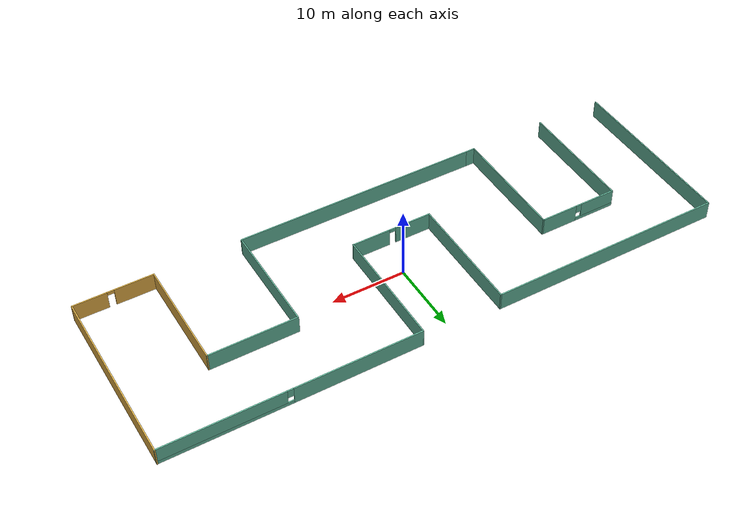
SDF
<?xml version='1.0'?>
<sdf version='1.6'>
  <model name='mybuilding'>
    <pose frame=''>-0.424908 -0.788809 0 0 -0 0</pose>
    <link name='Wall_10'>
      <collision name='Wall_10_Collision'>
        <geometry>
          <box>
            <size>15.5 0.15 2.5</size>
          </box>
        </geometry>
        <pose frame=''>0 0 1.25 0 -0 0</pose>
      </collision>
      <visual name='Wall_10_Visual'>
        <pose frame=''>0 0 1.25 0 -0 0</pose>
        <geometry>
          <box>
            <size>15.5 0.15 2.5</size>
          </box>
        </geometry>
        <material>
          <script>
            <uri>file://media/materials/scripts/gazebo.material</uri>
            <name>Gazebo/Grey</name>
          </script>
          <ambient>1 0.764706 0.305882 1</ambient>
        </material>
      </visual>
      <pose frame=''>28.0301 -4.75 0 0 -0 1.5708</pose>
    </link>
    <link name='Wall_11'>
      <collision name='Wall_11_Collision'>
        <geometry>
          <box>
            <size>12 0.15 2.5</size>
          </box>
        </geometry>
        <pose frame=''>0 0 1.25 0 -0 0</pose>
      </collision>
      <visual name='Wall_11_Visual'>
        <pose frame=''>0 0 1.25 0 -0 0</pose>
        <geometry>
          <box>
            <size>12 0.15 2.5</size>
          </box>
        </geometry>
        <material>
          <script>
            <uri>file://media/materials/scripts/gazebo.material</uri>
            <name>Gazebo/Grey</name>
          </script>
          <ambient>0.435294 0.796078 0.67451 1</ambient>
        </material>
      </visual>
      <pose frame=''>22.1051 2.925 0 0 -0 3.14159</pose>
    </link>
    <link name='Wall_12'>
      <collision name='Wall_12_Collision'>
        <geometry>
          <box>
            <size>15.5 0.15 2.5</size>
          </box>
        </geometry>
        <pose frame=''>0 0 1.25 0 -0 0</pose>
      </collision>
      <visual name='Wall_12_Visual'>
        <pose frame=''>0 0 1.25 0 -0 0</pose>
        <geometry>
          <box>
            <size>15.5 0.15 2.5</size>
          </box>
        </geometry>
        <material>
          <script>
            <uri>file://media/materials/scripts/gazebo.material</uri>
            <name>Gazebo/Grey</name>
          </script>
          <ambient>0.435294 0.796078 0.67451 1</ambient>
        </material>
      </visual>
      <pose frame=''>16.1801 -4.75 0 0 0 -1.5708</pose>
    </link>
    <link name='Wall_14'>
      <collision name='Wall_14_Collision'>
        <geometry>
          <box>
            <size>17 0.15 2.5</size>
          </box>
        </geometry>
        <pose frame=''>0 0 1.25 0 -0 0</pose>
      </collision>
      <visual name='Wall_14_Visual'>
        <pose frame=''>0 0 1.25 0 -0 0</pose>
        <geometry>
          <box>
            <size>17 0.15 2.5</size>
          </box>
        </geometry>
        <material>
          <script>
            <uri>file://media/materials/scripts/gazebo.material</uri>
            <name>Gazebo/Grey</name>
          </script>
          <ambient>0.435294 0.796078 0.67451 1</ambient>
        </material>
      </visual>
      <pose frame=''>4.55 3.9465 0 0 0 -1.5708</pose>
    </link>
    <link name='Wall_15'>
      <pose frame=''>-1 -4.4785 0 0 -0 3.14159</pose>
      <visual name='Wall_15_Visual_0'>
        <pose frame=''>-2.97687 0 1.25 0 -0 0</pose>
        <geometry>
          <box>
            <size>5.29627 0.15 2.5</size>
          </box>
        </geometry>
        <material>
          <script>
            <uri>file://media/materials/scripts/gazebo.material</uri>
            <name>Gazebo/Grey</name>
          </script>
          <ambient>0.435294 0.796078 0.67451 1</ambient>
        </material>
      </visual>
      <collision name='Wall_15_Collision_0'>
        <geometry>
          <box>
            <size>5.29627 0.15 2.5</size>
          </box>
        </geometry>
        <pose frame=''>-2.97687 0 1.25 0 -0 0</pose>
      </collision>
      <visual name='Wall_15_Visual_1'>
        <pose frame=''>3.09813 0 1.25 0 -0 0</pose>
        <geometry>
          <box>
            <size>5.05373 0.15 2.5</size>
          </box>
        </geometry>
        <material>
          <script>
            <uri>file://media/materials/scripts/gazebo.material</uri>
            <name>Gazebo/Grey</name>
          </script>
          <ambient>0.435294 0.796078 0.67451 1</ambient>
        </material>
      </visual>
      <collision name='Wall_15_Collision_1'>
        <geometry>
          <box>
            <size>5.05373 0.15 2.5</size>
          </box>
        </geometry>
        <pose frame=''>3.09813 0 1.25 0 -0 0</pose>
      </collision>
      <visual name='Wall_15_Visual_2'>
        <pose frame=''>0.121265 0 2.25 0 -0 0</pose>
        <geometry>
          <box>
            <size>0.9 0.15 0.5</size>
          </box>
        </geometry>
        <material>
          <script>
            <uri>file://media/materials/scripts/gazebo.material</uri>
            <name>Gazebo/Grey</name>
          </script>
          <ambient>0.435294 0.796078 0.67451 1</ambient>
        </material>
      </visual>
      <collision name='Wall_15_Collision_2'>
        <geometry>
          <box>
            <size>0.9 0.15 0.5</size>
          </box>
        </geometry>
        <pose frame=''>0.121265 0 2.25 0 -0 0</pose>
      </collision>
    </link>
    <link name='Wall_17'>
      <collision name='Wall_17_Collision'>
        <geometry>
          <box>
            <size>33.5 0.15 2.5</size>
          </box>
        </geometry>
        <pose frame=''>0 0 1.25 0 -0 0</pose>
      </collision>
      <visual name='Wall_17_Visual'>
        <pose frame=''>0 0 1.25 0 -0 0</pose>
        <geometry>
          <box>
            <size>33.5 0.15 2.5</size>
          </box>
        </geometry>
        <material>
          <script>
            <uri>file://media/materials/scripts/gazebo.material</uri>
            <name>Gazebo/Grey</name>
          </script>
          <ambient>0.435294 0.796078 0.67451 1</ambient>
        </material>
      </visual>
      <pose frame=''>-0.494871 -12.425 0 0 -0 3.14159</pose>
    </link>
    <link name='Wall_18'>
      <collision name='Wall_18_Collision'>
        <geometry>
          <box>
            <size>1.5 0.15 2.5</size>
          </box>
        </geometry>
        <pose frame=''>0 0 1.25 0 -0 0</pose>
      </collision>
      <visual name='Wall_18_Visual'>
        <pose frame=''>0 0 1.25 0 -0 0</pose>
        <geometry>
          <box>
            <size>1.5 0.15 2.5</size>
          </box>
        </geometry>
        <material>
          <script>
            <uri>file://media/materials/scripts/gazebo.material</uri>
            <name>Gazebo/Grey</name>
          </script>
          <ambient>0.435294 0.796078 0.67451 1</ambient>
        </material>
      </visual>
      <pose frame=''>-17.8449 -12.425 0 0 -0 3.14159</pose>
    </link>
    <link name='Wall_19'>
      <collision name='Wall_19_Collision'>
        <geometry>
          <box>
            <size>16.5 0.15 2.5</size>
          </box>
        </geometry>
        <pose frame=''>0 0 1.25 0 -0 0</pose>
      </collision>
      <visual name='Wall_19_Visual'>
        <pose frame=''>0 0 1.25 0 -0 0</pose>
        <geometry>
          <box>
            <size>16.5 0.15 2.5</size>
          </box>
        </geometry>
        <material>
          <script>
            <uri>file://media/materials/scripts/gazebo.material</uri>
            <name>Gazebo/Grey</name>
          </script>
          <ambient>0.435294 0.796078 0.67451 1</ambient>
        </material>
      </visual>
      <pose frame=''>-18.5199 -4.25 0 0 -0 1.5708</pose>
    </link>
    <link name='Wall_21'>
      <pose frame=''>21.6 12.3715 0 0 -0 0</pose>
      <visual name='Wall_21_Visual_0'>
        <pose frame=''>-8.51309 0 1.25 0 -0 0</pose>
        <geometry>
          <box>
            <size>17.2238 0.15 2.5</size>
          </box>
        </geometry>
        <material>
          <script>
            <uri>file://media/materials/scripts/gazebo.material</uri>
            <name>Gazebo/Grey</name>
          </script>
          <ambient>0.435294 0.796078 0.67451 1</ambient>
        </material>
      </visual>
      <collision name='Wall_21_Collision_0'>
        <geometry>
          <box>
            <size>17.2238 0.15 2.5</size>
          </box>
        </geometry>
        <pose frame=''>-8.51309 0 1.25 0 -0 0</pose>
      </collision>
      <visual name='Wall_21_Visual_1'>
        <pose frame=''>8.61191 0 0.25 0 -0 0</pose>
        <geometry>
          <box>
            <size>17.0262 0.15 0.5</size>
          </box>
        </geometry>
        <material>
          <script>
            <uri>file://media/materials/scripts/gazebo.material</uri>
            <name>Gazebo/Grey</name>
          </script>
          <ambient>0.435294 0.796078 0.67451 1</ambient>
        </material>
      </visual>
      <collision name='Wall_21_Collision_1'>
        <geometry>
          <box>
            <size>17.0262 0.15 0.5</size>
          </box>
        </geometry>
        <pose frame=''>8.61191 0 0.25 0 -0 0</pose>
      </collision>
      <visual name='Wall_21_Visual_2'>
        <pose frame=''>9.01191 0 1.5 0 -0 0</pose>
        <geometry>
          <box>
            <size>16.2262 0.15 2</size>
          </box>
        </geometry>
        <material>
          <script>
            <uri>file://media/materials/scripts/gazebo.material</uri>
            <name>Gazebo/Grey</name>
          </script>
          <ambient>0.435294 0.796078 0.67451 1</ambient>
        </material>
      </visual>
      <collision name='Wall_21_Collision_2'>
        <geometry>
          <box>
            <size>16.2262 0.15 2</size>
          </box>
        </geometry>
        <pose frame=''>9.01191 0 1.5 0 -0 0</pose>
      </collision>
      <visual name='Wall_21_Visual_3'>
        <pose frame=''>0.498819 0 1.9 0 -0 0</pose>
        <geometry>
          <box>
            <size>0.8 0.15 1.2</size>
          </box>
        </geometry>
        <material>
          <script>
            <uri>file://media/materials/scripts/gazebo.material</uri>
            <name>Gazebo/Grey</name>
          </script>
          <ambient>0.435294 0.796078 0.67451 1</ambient>
        </material>
      </visual>
      <collision name='Wall_21_Collision_3'>
        <geometry>
          <box>
            <size>0.8 0.15 1.2</size>
          </box>
        </geometry>
        <pose frame=''>0.498819 0 1.9 0 -0 0</pose>
      </collision>
    </link>
    <link name='Wall_23'>
      <collision name='Wall_23_Collision'>
        <geometry>
          <box>
            <size>16.75 0.15 2.5</size>
          </box>
        </geometry>
        <pose frame=''>0 0 1.25 0 -0 0</pose>
      </collision>
      <visual name='Wall_23_Visual'>
        <pose frame=''>0 0 1.25 0 -0 0</pose>
        <geometry>
          <box>
            <size>16.75 0.15 2.5</size>
          </box>
        </geometry>
        <material>
          <script>
            <uri>file://media/materials/scripts/gazebo.material</uri>
            <name>Gazebo/Grey</name>
          </script>
          <ambient>0.435294 0.796078 0.67451 1</ambient>
        </material>
      </visual>
      <pose frame=''>-6.55 3.8215 0 0 -0 1.5708</pose>
    </link>
    <link name='Wall_24'>
      <collision name='Wall_24_Collision'>
        <geometry>
          <box>
            <size>32.25 0.15 2.5</size>
          </box>
        </geometry>
        <pose frame=''>0 0 1.25 0 -0 0</pose>
      </collision>
      <visual name='Wall_24_Visual'>
        <pose frame=''>0 0 1.25 0 -0 0</pose>
        <geometry>
          <box>
            <size>32.25 0.15 2.5</size>
          </box>
        </geometry>
        <material>
          <script>
            <uri>file://media/materials/scripts/gazebo.material</uri>
            <name>Gazebo/Grey</name>
          </script>
          <ambient>0.435294 0.796078 0.67451 1</ambient>
        </material>
      </visual>
      <pose frame=''>-22.6 12.1215 0 0 -0 3.14159</pose>
    </link>
    <link name='Wall_25'>
      <collision name='Wall_25_Collision'>
        <geometry>
          <box>
            <size>24.5 0.15 2.5</size>
          </box>
        </geometry>
        <pose frame=''>0 0 1.25 0 -0 0</pose>
      </collision>
      <visual name='Wall_25_Visual'>
        <pose frame=''>0 0 1.25 0 -0 0</pose>
        <geometry>
          <box>
            <size>24.5 0.15 2.5</size>
          </box>
        </geometry>
        <material>
          <script>
            <uri>file://media/materials/scripts/gazebo.material</uri>
            <name>Gazebo/Grey</name>
          </script>
          <ambient>0.435294 0.796078 0.67451 1</ambient>
        </material>
      </visual>
      <pose frame=''>-38.65 -0.053502 0 0 0 -1.5708</pose>
    </link>
    <link name='Wall_27'>
      <pose frame=''>-23.9449 3.925 0 0 -0 3.14159</pose>
      <visual name='Wall_27_Visual_0'>
        <pose frame=''>-2.91227 0 1.25 0 -0 0</pose>
        <geometry>
          <box>
            <size>5.17546 0.15 2.5</size>
          </box>
        </geometry>
        <material>
          <script>
            <uri>file://media/materials/scripts/gazebo.material</uri>
            <name>Gazebo/Grey</name>
          </script>
          <ambient>0.435294 0.796078 0.67451 1</ambient>
        </material>
      </visual>
      <collision name='Wall_27_Collision_0'>
        <geometry>
          <box>
            <size>5.17546 0.15 2.5</size>
          </box>
        </geometry>
        <pose frame=''>-2.91227 0 1.25 0 -0 0</pose>
      </collision>
      <visual name='Wall_27_Visual_1'>
        <pose frame=''>2.58773 0 0.25 0 -0 0</pose>
        <geometry>
          <box>
            <size>5.82454 0.15 0.5</size>
          </box>
        </geometry>
        <material>
          <script>
            <uri>file://media/materials/scripts/gazebo.material</uri>
            <name>Gazebo/Grey</name>
          </script>
          <ambient>0.435294 0.796078 0.67451 1</ambient>
        </material>
      </visual>
      <collision name='Wall_27_Collision_1'>
        <geometry>
          <box>
            <size>5.82454 0.15 0.5</size>
          </box>
        </geometry>
        <pose frame=''>2.58773 0 0.25 0 -0 0</pose>
      </collision>
      <visual name='Wall_27_Visual_2'>
        <pose frame=''>2.98773 0 1.5 0 -0 0</pose>
        <geometry>
          <box>
            <size>5.02454 0.15 2</size>
          </box>
        </geometry>
        <material>
          <script>
            <uri>file://media/materials/scripts/gazebo.material</uri>
            <name>Gazebo/Grey</name>
          </script>
          <ambient>0.435294 0.796078 0.67451 1</ambient>
        </material>
      </visual>
      <collision name='Wall_27_Collision_2'>
        <geometry>
          <box>
            <size>5.02454 0.15 2</size>
          </box>
        </geometry>
        <pose frame=''>2.98773 0 1.5 0 -0 0</pose>
      </collision>
      <visual name='Wall_27_Visual_3'>
        <pose frame=''>0.075464 0 1.9 0 -0 0</pose>
        <geometry>
          <box>
            <size>0.8 0.15 1.2</size>
          </box>
        </geometry>
        <material>
          <script>
            <uri>file://media/materials/scripts/gazebo.material</uri>
            <name>Gazebo/Grey</name>
          </script>
          <ambient>0.435294 0.796078 0.67451 1</ambient>
        </material>
      </visual>
      <collision name='Wall_27_Collision_3'>
        <geometry>
          <box>
            <size>0.8 0.15 1.2</size>
          </box>
        </geometry>
        <pose frame=''>0.075464 0 1.9 0 -0 0</pose>
      </collision>
    </link>
    <link name='Wall_28'>
      <collision name='Wall_28_Collision'>
        <geometry>
          <box>
            <size>16.5 0.15 2.5</size>
          </box>
        </geometry>
        <pose frame=''>0 0 1.25 0 -0 0</pose>
      </collision>
      <visual name='Wall_28_Visual'>
        <pose frame=''>0 0 1.25 0 -0 0</pose>
        <geometry>
          <box>
            <size>16.5 0.15 2.5</size>
          </box>
        </geometry>
        <material>
          <script>
            <uri>file://media/materials/scripts/gazebo.material</uri>
            <name>Gazebo/Grey</name>
          </script>
          <ambient>0.435294 0.796078 0.67451 1</ambient>
        </material>
      </visual>
      <pose frame=''>-29.3699 -4.25 0 0 0 -1.5708</pose>
    </link>
    <link name='Wall_8'>
      <collision name='Wall_8_Collision'>
        <geometry>
          <box>
            <size>25 0.15 2.5</size>
          </box>
        </geometry>
        <pose frame=''>0 0 1.25 0 -0 0</pose>
      </collision>
      <visual name='Wall_8_Visual'>
        <pose frame=''>0 0 1.25 0 -0 0</pose>
        <geometry>
          <box>
            <size>25 0.15 2.5</size>
          </box>
        </geometry>
        <material>
          <script>
            <uri>file://media/materials/scripts/gazebo.material</uri>
            <name>Gazebo/Grey</name>
          </script>
          <ambient>1 0.764706 0.305882 1</ambient>
        </material>
      </visual>
      <pose frame=''>38.6301 0 0 0 0 -1.5708</pose>
    </link>
    <link name='Wall_9'>
      <pose frame=''>33.3301 -12.425 0 0 -0 3.14159</pose>
      <visual name='Wall_9_Visual_0'>
        <pose frame=''>-3.10187 0 1.25 0 -0 0</pose>
        <geometry>
          <box>
            <size>4.54627 0.15 2.5</size>
          </box>
        </geometry>
        <material>
          <script>
            <uri>file://media/materials/scripts/gazebo.material</uri>
            <name>Gazebo/Grey</name>
          </script>
          <ambient>1 0.764706 0.305882 1</ambient>
        </material>
      </visual>
      <collision name='Wall_9_Collision_0'>
        <geometry>
          <box>
            <size>4.54627 0.15 2.5</size>
          </box>
        </geometry>
        <pose frame=''>-3.10187 0 1.25 0 -0 0</pose>
      </collision>
      <visual name='Wall_9_Visual_1'>
        <pose frame=''>2.72313 0 1.25 0 -0 0</pose>
        <geometry>
          <box>
            <size>5.30373 0.15 2.5</size>
          </box>
        </geometry>
        <material>
          <script>
            <uri>file://media/materials/scripts/gazebo.material</uri>
            <name>Gazebo/Grey</name>
          </script>
          <ambient>1 0.764706 0.305882 1</ambient>
        </material>
      </visual>
      <collision name='Wall_9_Collision_1'>
        <geometry>
          <box>
            <size>5.30373 0.15 2.5</size>
          </box>
        </geometry>
        <pose frame=''>2.72313 0 1.25 0 -0 0</pose>
      </collision>
      <visual name='Wall_9_Visual_2'>
        <pose frame=''>-0.378735 0 2.25 0 -0 0</pose>
        <geometry>
          <box>
            <size>0.9 0.15 0.5</size>
          </box>
        </geometry>
        <material>
          <script>
            <uri>file://media/materials/scripts/gazebo.material</uri>
            <name>Gazebo/Grey</name>
          </script>
          <ambient>1 0.764706 0.305882 1</ambient>
        </material>
      </visual>
      <collision name='Wall_9_Collision_2'>
        <geometry>
          <box>
            <size>0.9 0.15 0.5</size>
          </box>
        </geometry>
        <pose frame=''>-0.378735 0 2.25 0 -0 0</pose>
      </collision>
    </link>
    <static>1</static>
  </model>
</sdf>
